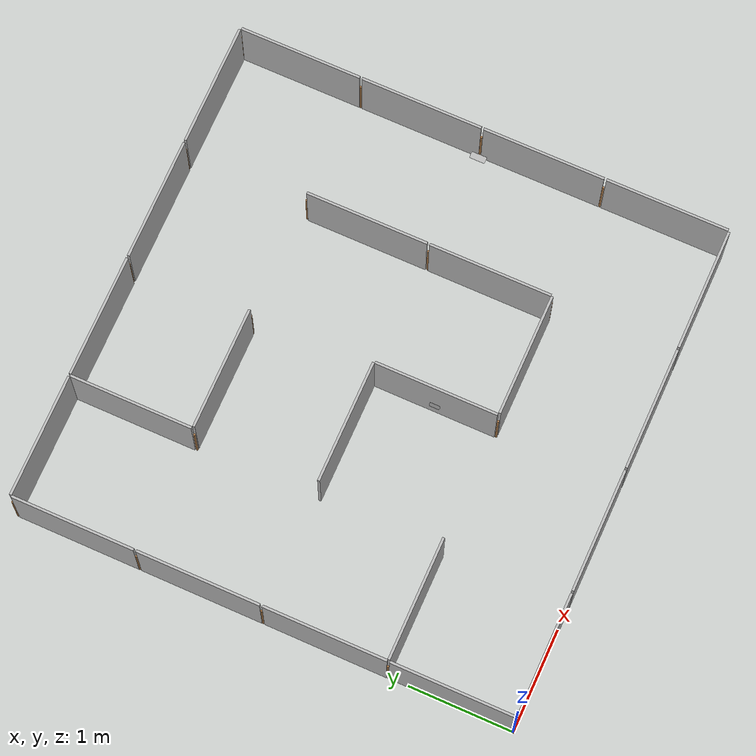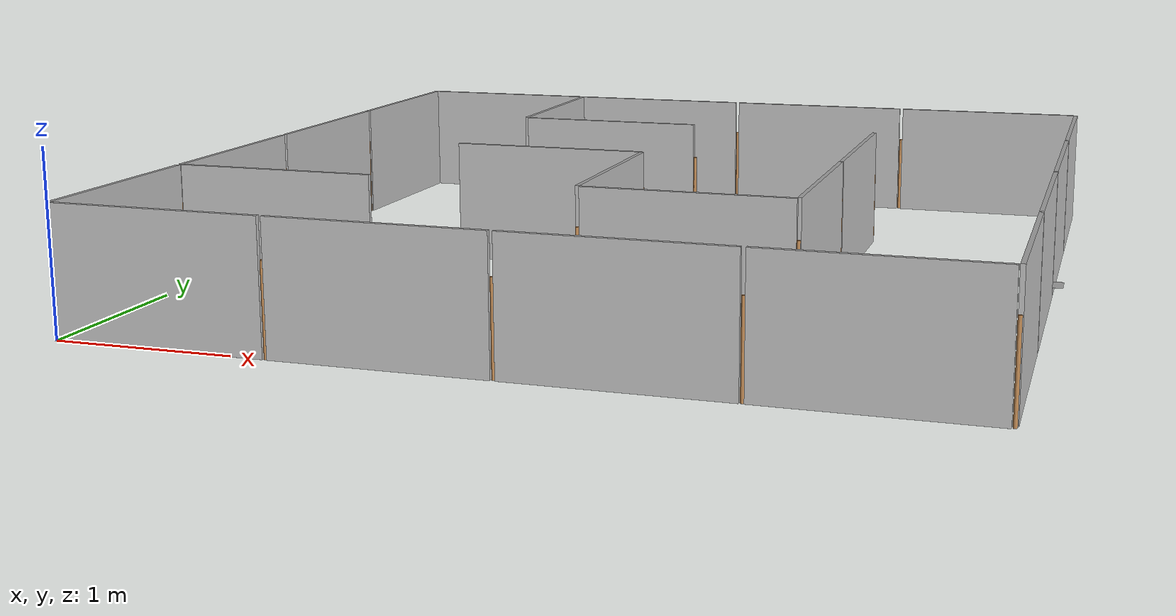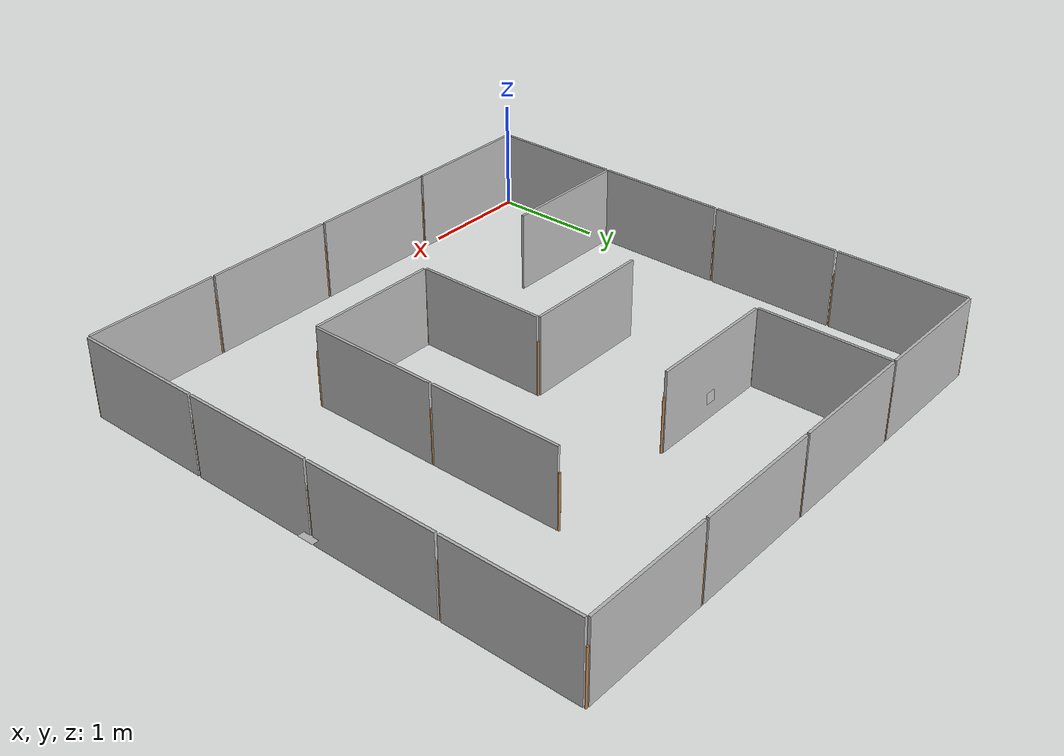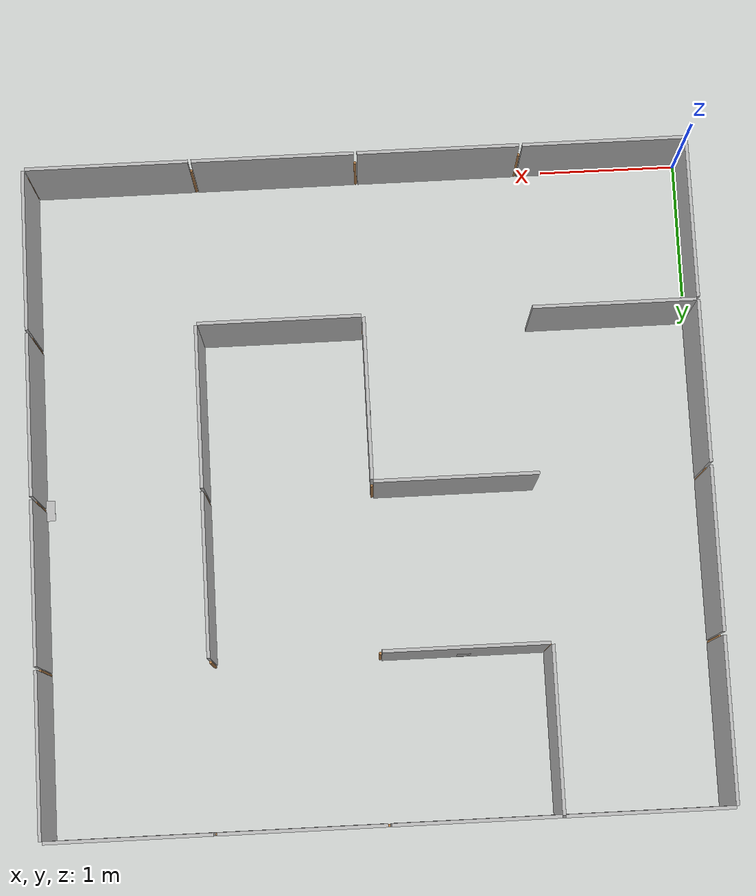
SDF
<?xml version="1.0"?>
<sdf version="1.5">
    <model name="maze_1_6x5">

<!-- outer wall along x axis (y:0) -->
        <include>
            <name>plywood_panel_0_0_b</name>
            <uri>model://plywood_panel</uri>
            <pose>0 0 0 0 0 1.571</pose>
        </include>
        <include>
            <name>wooden_joint_0_0_b</name>
            <uri>model://wooden_joint</uri>
            <pose>0 0 0 0 0 0</pose>
        </include>

        <include>
            <name>plywood_panel_1_0_b</name>
            <uri>model://plywood_panel</uri>
            <pose>1.2 0 0 0 0 1.571</pose>
        </include>
        <include>
            <name>wooden_joint_1_0_b</name>
            <uri>model://wooden_joint</uri>
            <pose>1.2 0 0 0 0 0</pose>
        </include>

        <include>
            <name>plywood_panel_2_0_b</name>
            <uri>model://plywood_panel</uri>
            <pose>2.4 0 0 0 0 1.571</pose>
        </include>
        <include>
            <name>wooden_joint_2_0_b</name>
            <uri>model://wooden_joint</uri>
            <pose>2.4 0 0 0 0 0</pose>
        </include>

        <include>
            <name>plywood_panel_3_0_b</name>
            <uri>model://plywood_panel</uri>
            <pose>3.6 0 0 0 0 1.571</pose>
        </include>
        <include>
            <name>wooden_joint_3_0_b</name>
            <uri>model://wooden_joint</uri>
            <pose>3.6 0 0 0 0 0</pose>
        </include>

<!-- outer wall along x axis (y:5) -->
        <include>
            <name>plywood_panel_0_5_b</name>
            <uri>model://plywood_panel</uri>
            <pose>0 4.8 0 0 0 1.571</pose>
        </include>

        <include>
            <name>plywood_panel_1_5_b</name>
            <uri>model://plywood_panel</uri>
            <pose>1.2 4.8 0 0 0 1.571</pose>
        </include>
        <include>
            <name>wooden_joint_1_5_b</name>
            <uri>model://wooden_joint</uri>
            <pose>1.2 4.8 0 0 0 0</pose>
        </include>

        <include>
            <name>plywood_panel_2_5_b</name>
            <uri>model://plywood_panel</uri>
            <pose>2.4 4.8 0 0 0 1.571</pose>
        </include>
        <include>
            <name>wooden_joint_2_5_b</name>
            <uri>model://wooden_joint</uri>
            <pose>2.4 4.8 0 0 0 0</pose>
        </include>

        <include>
            <name>plywood_panel_3_5_b</name>
            <uri>model://plywood_panel</uri>
            <pose>3.6 4.8 0 0 0 1.571</pose>
        </include>
        <include>
            <name>wooden_joint_3_5_b</name>
            <uri>model://wooden_joint</uri>
            <pose>3.6 4.8 0 0 0 0</pose>
        </include>

<!-- outer wall along y axis -->
        <include>
            <name>plywood_panel_0_0_a</name>
            <uri>model://plywood_panel</uri>
            <pose>0 0 0 0 0 3.14159</pose>
        </include>

        <include>
            <name>plywood_panel_0_1_a</name>
            <uri>model://plywood_panel</uri>
            <pose>0 1.2 0 0 0 3.14159</pose>
        </include>
        <include>
            <name>wooden_joint_0_1_a</name>
            <uri>model://wooden_joint</uri>
            <pose>0 1.2 0 0 0 0</pose>
        </include>

        <include>
            <name>plywood_panel_0_2_a</name>
            <uri>model://plywood_panel</uri>
            <pose>0 2.4 0 0 0 3.14159</pose>
        </include>
        <include>
            <name>wooden_joint_0_2_a</name>
            <uri>model://wooden_joint</uri>
            <pose>0 2.4 0 0 0 0</pose>
        </include>

        <include>
            <name>plywood_panel_0_3_a</name>
            <uri>model://plywood_panel</uri>
            <pose>0 3.6 0 0 0 3.14159</pose>
        </include>
        <include>
            <name>wooden_joint_0_3_a</name>
            <uri>model://wooden_joint</uri>
            <pose>0 3.6 0 0 0 0</pose>
        </include>
        <include>
            <name>wooden_joint_0_4_a</name>
            <uri>model://wooden_joint</uri>
            <pose>0 4.8 0 0 0 0</pose>
        </include>

<!-- outer wall along y axis (x:6)-->
        <include>
            <name>plywood_panel_5_0_a</name>
            <uri>model://plywood_panel</uri>
            <pose>4.8 0 0 0 0 3.14159</pose>
        </include>
        <include>
            <name>wooden_joint_5_0_a</name>
            <uri>model://wooden_joint</uri>
            <pose>4.8 0 0 0 0 0</pose>
        </include>

        <include>
            <name>plywood_panel_5_1_a</name>
            <uri>model://plywood_panel</uri>
            <pose>4.8 1.2 0 0 0 3.14159</pose>
        </include>
        <include>
            <name>wooden_joint_5_1_a</name>
            <uri>model://wooden_joint</uri>
            <pose>4.8 1.2 0 0 0 0</pose>
        </include>

        <include>
            <name>aruco_tag_1_5_1</name>
            <uri>model://aruco_tag_1</uri>
            <pose>4.8 2.4 0 0 0 1.5708</pose>
        </include>

        <include>
            <name>plywood_panel_5_2_a</name>
            <uri>model://plywood_panel</uri>
            <pose>4.8 2.4 0 0 0 3.14159</pose>
        </include>
        <include>
            <name>wooden_joint_5_2_a</name>
            <uri>model://wooden_joint</uri>
            <pose>4.8 2.4 0 0 0 0</pose>
        </include>

        <include>
            <name>plywood_panel_5_3_a</name>
            <uri>model://plywood_panel</uri>
            <pose>4.8 3.6 0 0 0 3.14159</pose>
        </include>
        <include>
            <name>wooden_joint_5_3_a</name>
            <uri>model://wooden_joint</uri>
            <pose>4.8 3.6 0 0 0 0</pose>
        </include>

        <include>
            <name>wooden_joint_5_4_a</name>
            <uri>model://wooden_joint</uri>
            <pose>4.8 4.8 0 0 0 0</pose>
        </include>

<!-- interior panels -->

<!-- row 1 -->
        <include>
            <name>plywood_panel_1_1_c</name>
            <uri>model://plywood_panel</uri>
            <pose>1.2 1.2 0 0 0 -1.5708</pose>
        </include>

        <include>
            <name>plywood_panel_3_1_c</name>
            <uri>model://plywood_panel</uri>
            <pose>3.6 1.2 0 0 0 -1.5708</pose>
        </include>

<!-- row 2 -->
        <include>
            <name>plywood_panel_2_2_c</name>
            <uri>model://plywood_panel</uri>
            <pose>2.4 2.4 0 0 0 -1.5708</pose>
        </include>
        <include>
            <name>aruco_tag_3_2_2</name>
            <uri>model://aruco_tag_3</uri>
            <pose>2.4 2.4 0 0 0 1.5708</pose>
        </include>

<!-- row 3 -->
        <include>
            <name>plywood_panel_2_3_c</name>
            <uri>model://plywood_panel</uri>
            <pose>2.4 3.6 0 0 0 -1.5708</pose>
        </include>

        <include>
            <name>aruco_tag_2_2_3</name>
            <uri>model://aruco_tag_2</uri>
            <pose>2.4 3.6 0 0 0 0</pose>
        </include>

<!-- column 1 -->
        <include>
            <name>plywood_panel_1_4_a</name>
            <uri>model://plywood_panel</uri>
            <pose>1.2 4.8 0 0 0 0</pose>
        </include>

<!-- column 2 -->
        <include>
            <name>plywood_panel_2_2_a</name>
            <uri>model://plywood_panel</uri>
            <pose>2.4 2.4 0 0 0 0</pose>
        </include>

<!-- column 3 -->
        <include>
            <name>plywood_panel_3_2_a</name>
            <uri>model://plywood_panel</uri>
            <pose>3.6 2.4 0 0 0 0</pose>
        </include>

        <include>
            <name>plywood_panel_3_3_a</name>
            <uri>model://plywood_panel</uri>
            <pose>3.6 3.6 0 0 0 0</pose>
        </include>

<!-- interior joints -->

<!-- row 1 -->
        <include>
            <name>wooden_joint_2_1</name>
            <uri>model://wooden_joint</uri>
            <pose>2.4 1.2 0 0 0 0</pose>
        </include>

        <include>
            <name>wooden_joint_3_1</name>
            <uri>model://wooden_joint</uri>
            <pose>3.6 1.2 0 0 0 0</pose>
        </include>

<!-- row 2 -->
        <include>
            <name>wooden_joint_2_2</name>
            <uri>model://wooden_joint</uri>
            <pose>2.4 2.4 0 0 0 0</pose>
        </include>

        <include>
            <name>wooden_joint_3_2</name>
            <uri>model://wooden_joint</uri>
            <pose>3.6 2.4 0 0 0 0</pose>
        </include>

<!-- row 3 -->
        <include>
            <name>wooden_joint_1_3</name>
            <uri>model://wooden_joint</uri>
            <pose>1.2 3.6 0 0 0 0</pose>
        </include>

        <include>
            <name>wooden_joint_2_3</name>
            <uri>model://wooden_joint</uri>
            <pose>2.4 3.6 0 0 0 0</pose>
        </include>

        <include>
            <name>wooden_joint_3_3</name>
            <uri>model://wooden_joint</uri>
            <pose>3.6 3.6 0 0 0 0</pose>
        </include>

    </model>
</sdf>

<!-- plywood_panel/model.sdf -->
<sdf version="1.4">
    <model name="plywood_panel">
        <static>true</static>

        <link name="main">
            <pose>0 0 0 0 0 0</pose>
            <collision name="collision">
                <!-- Match the visual's orientation and offset so collision aligns exactly -->
                <pose>0.01 -0.01 0 0 -1.571 0</pose>
                <geometry>
                    <mesh>
                        <scale>1.2 1.2 1.2</scale>
                        <uri>model://plywood_panel/meshes/plywood.dae</uri>
                    </mesh>
                </geometry>
            </collision>

            <visual name="visual">
                <!-- offset origin to align to the center of one grid edge and rotate to vertical position -->
                <pose>0.01 -0.01 0 0 -1.571 0</pose>
                <geometry>
                    <mesh>
                        <scale>1.2 1.2 1.2</scale>
                        <!-- measures 0.98 x 0.6 x 0.02 mt, origin is at one corner of the panel -->
                        <uri>model://plywood_panel/meshes/plywood.dae</uri>
                    </mesh>
                </geometry>
            </visual>
        </link>

    </model>
</sdf>

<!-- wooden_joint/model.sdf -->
<sdf version='1.6'>
  <model name='wooden_joint'>
    <link name='link_0'>
      <pose frame=''>0 0 0.25 0 -0 0</pose>
      <inertial>
        <mass>0.00215981</mass>
        <inertia>
          <ixx>0.00018028</ixx>
          <ixy>0</ixy>
          <ixz>0</ixz>
          <iyy>0.00018028</iyy>
          <iyz>0</iyz>
          <izz>5.8e-07</izz>
        </inertia>
        <pose frame=''>0 0 0 0 -0 0</pose>
      </inertial>
      <gravity>1</gravity>
      <self_collide>0</self_collide>
      <kinematic>0</kinematic>
      <visual name='visual'>
        <pose frame=''>0 0 0 0 -0 0</pose>
        <geometry>
          <cylinder>
            <radius>0.01</radius>
            <length>0.5</length>
          </cylinder>
        </geometry>
        <material>
          <lighting>1</lighting>
          <script>
            <uri>file://media/materials/scripts/gazebo.material</uri>
            <name>Gazebo/Wood</name>
          </script>
          <shader type='pixel'>
            <normal_map>__default__</normal_map>
          </shader>
          <ambient>0.3 0.3 0.3 1</ambient>
          <diffuse>0.7 0.7 0.7 1</diffuse>
          <specular>0.01 0.01 0.01 1</specular>
          <emissive>0 0 0 1</emissive>
        </material>
        <transparency>0</transparency>
        <cast_shadows>1</cast_shadows>
      </visual>
      <collision name='collision'>
        <laser_retro>0</laser_retro>
        <max_contacts>10</max_contacts>
        <pose frame=''>0 0 0 0 -0 0</pose>
        <geometry>
          <cylinder>
            <radius>0.01</radius>
            <length>0.5</length>
          </cylinder>
        </geometry>
        <surface>
          <friction>
            <ode>
              <mu>1</mu>
              <mu2>1</mu2>
              <fdir1>0 0 0</fdir1>
              <slip1>0</slip1>
              <slip2>0</slip2>
            </ode>
            <torsional>
              <coefficient>1</coefficient>
              <patch_radius>0</patch_radius>
              <surface_radius>0</surface_radius>
              <use_patch_radius>1</use_patch_radius>
              <ode>
                <slip>0</slip>
              </ode>
            </torsional>
          </friction>
          <bounce>
            <restitution_coefficient>0</restitution_coefficient>
            <threshold>1e+06</threshold>
          </bounce>
          <contact>
            <collide_without_contact>0</collide_without_contact>
            <collide_without_contact_bitmask>1</collide_without_contact_bitmask>
            <collide_bitmask>1</collide_bitmask>
            <ode>
              <soft_cfm>0</soft_cfm>
              <soft_erp>0.2</soft_erp>
              <kp>1e+8</kp>
              <kd>1</kd>
              <max_vel>0.01</max_vel>
              <min_depth>0</min_depth>
            </ode>
            <bullet>
              <split_impulse>1</split_impulse>
              <split_impulse_penetration_threshold>-0.01</split_impulse_penetration_threshold>
              <soft_cfm>0</soft_cfm>
              <soft_erp>0.2</soft_erp>
              <kp>1e+8</kp>
              <kd>1</kd>
            </bullet>
          </contact>
        </surface>
      </collision>
    </link>
    <static>1</static>
    <allow_auto_disable>1</allow_auto_disable>
  </model>
</sdf>

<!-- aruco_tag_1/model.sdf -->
<sdf version="1.6">
  <model name="aruco_tag_1">
    <static>true</static>
    <link name="aruco_tag_link">
      <visual name="aruco_tag_visual">
        <geometry>
          <plane>
            <size>0.15 0.15</size> <!-- 15cm x 15cm tag -->
          </plane>
        </geometry>
        <material>
          <script>
            <uri>model://aruco_tag_1/scripts</uri>
            <name>tag36_11</name>
          </script>
        </material>
      </visual>
      <collision name="aruco_tag_collision">
        <geometry>
          <plane>
            <size>0.15 0.15</size>
          </plane>
        </geometry>
      </collision>
      <pose>0 0 0.075 0 0 0</pose> <!-- Raise the tag above ground -->
    </link>
  </model>
</sdf>

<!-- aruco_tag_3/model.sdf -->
<sdf version="1.6">
  <model name="aruco_tag_3">
    <static>true</static>
    <link name="link">
      <collision name="collision">
        <geometry>
          <plane>
            <size>0.10 0.10</size>
          </plane>
        </geometry>
      </collision>
      <visual name="visual">
        <pose>-0.6 0.018 0.2 1.5078 0 3.14159</pose> <!-- Raise the tag above ground -->
        <cast_shadows>false</cast_shadows>
        <geometry>
          <plane>
            <size>0.10 0.10</size> <!-- 10cm x 10cm tag -->
          </plane>
        </geometry>
        <material>
          <script>
            <uri>model://aruco_tag_3/scripts</uri>
            <uri>model://aruco_tag_3/texture</uri>
            <name>6x6_1000-19</name>
          </script>
        </material>
      </visual>
    </link>
  </model>
</sdf>

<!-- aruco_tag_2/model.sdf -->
<sdf version="1.6">
  <model name="aruco_tag_2">
    <static>true</static>
    <link name="link">
      <collision name="collision">
        <geometry>
          <plane>
            <size>0.10 0.10</size>
          </plane>
        </geometry>
      </collision>
      <visual name="visual">
        <pose>-0.6 0.018 0.2 1.5078 0 3.14159</pose> <!-- Raise the tag above ground -->
        <cast_shadows>false</cast_shadows>
        <geometry>
          <plane>
            <size>0.10 0.10</size> <!-- 10cm x 10cm tag -->
          </plane>
        </geometry>
        <material>
          <script>
            <uri>model://aruco_tag_2/scripts</uri>
            <uri>model://aruco_tag_2/texture</uri>
            <name>6x6_1000-48</name>
          </script>
        </material>
      </visual>
    </link>
  </model>
</sdf>
